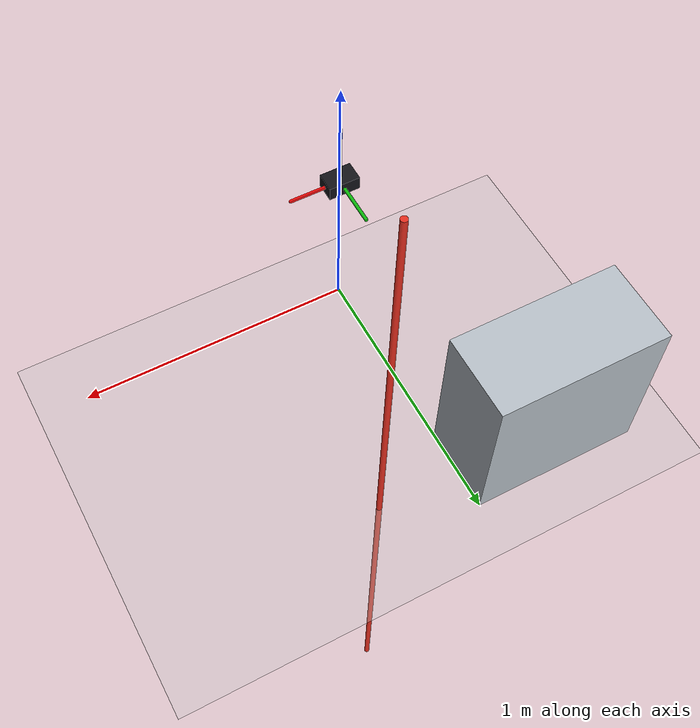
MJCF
<mujoco model="orbslam3_camera_trajectory_replay">
  <compiler angle="radian" autolimits="true" />

  <option timestep="0.005" gravity="0 0 -9.81" />

  <extension>
    <plugin plugin="mujoco.sensor.ray_caster_camera" />
  </extension>

  <visual>
    <global azimuth="135" elevation="-25" offwidth="1280" offheight="720" />
    <quality shadowsize="2048" />
    <headlight diffuse="0.6 0.6 0.6" ambient="0.2 0.2 0.2" specular="0.1 0.1 0.1" />
  </visual>

  <include file="mujoco_custom_scene.xml" />

  <asset>
    <material name="camera_body" rgba="0.08 0.08 0.10 1" />
    <material name="axis_x" rgba="1.0 0.05 0.05 1" />
    <material name="axis_y" rgba="0.05 0.75 0.05 1" />
    <material name="axis_z" rgba="0.05 0.25 1.0 1" />
    <material name="path" rgba="0.0 0.35 1.0 1" />
  </asset>

  <worldbody>
    <body name="tracked_camera_mocap" mocap="true" pos="0 0 0.6" quat="1 0 0 0">
      <geom name="camera_box" type="box" size="0.055 0.035 0.025" material="camera_body" />

      <!-- Body axes follow the ORB/OpenCV camera convention: X right, Y down, Z forward. -->
      <geom name="camera_axis_x" type="capsule" fromto="0 0 0 0.18 0 0" size="0.006"
        material="axis_x" />
      <geom name="camera_axis_y" type="capsule" fromto="0 0 0 0 0.18 0" size="0.006"
        material="axis_y" />
      <geom name="camera_axis_z" type="capsule" fromto="0 0 0 0 0 0.24" size="0.006"
        material="axis_z" />

      <!-- MuJoCo cameras look along local -Z. This fixed 180 deg X rotation maps
           the camera view onto the ORB/OpenCV +Z optical axis. -->
      <camera name="tracked_camera" pos="0 0 0" quat="0 1 0 0"
        focal="1 1"
        sensorsize="2.0 1.1547005"
        resolution="640 370" />
    </body>

    <camera name="overview" pos="2.5 -3.0 2.0" xyaxes="0.76 0.65 0 -0.32 0.38 0.87" fovy="45" />
  </worldbody>

  <sensor>
    <plugin name="tracked_depth_raycaster" plugin="mujoco.sensor.ray_caster_camera"
      objtype="camera" objname="tracked_camera">
      <config key="focal_length" value="1" />
      <config key="horizontal_aperture" value="2" />
      <config key="vertical_aperture" value="1.154700538" />
      <config key="size" value="64 32" />
      <config key="dis_range" value="0.01 5.0" />
      <config key="baseline" value="0.095" />
      <config key="lossangle" value="80" />
      <config key="min_energy" value="0.2" />
      <config key="sensor_data_types" value="distance_to_image_plane_noise" />
      <config key="noise_type" value="stereo_noise" />
      <config key="noise_cfg" value="6 0" />
      <config key="draw_hip_point" value="1 0.015 1 0 0 0.75" />
      <config key="geomgroup" value="1 1 1 1 1 1" />
      <config key="detect_parentbody" value="0" />
      <config key="n_step_update" value="1" />
    </plugin>

    <plugin name="tracked_aux_depth_raycaster" plugin="mujoco.sensor.ray_caster_camera"
      objtype="camera" objname="tracked_camera">
      <config key="focal_length" value="1" />
      <config key="horizontal_aperture" value="2" />
      <config key="vertical_aperture" value="1.154700538" />
      <config key="size" value="64 32" />
      <config key="dis_range" value="0.01 5.0" />
      <config key="baseline" value="0.0" />
      <config key="lossangle" value="88" />
      <config key="min_energy" value="0.0" />
      <config key="sensor_data_types" value="distance_to_image_plane_noise" />
      <config key="noise_type" value="noise1" />
      <config key="noise_cfg" value="0 0 0.05 0" />
      <config key="geomgroup" value="1 1 1 1 1 1" />
      <config key="detect_parentbody" value="0" />
      <config key="n_step_update" value="1" />
    </plugin>
  </sensor>
</mujoco>

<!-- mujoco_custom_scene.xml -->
<mujocoinclude>
  <asset>
    <!-- Put textures, materials, meshes, and other assets for your custom scene here. -->
    <texture name="grid" type="2d" builtin="checker" width="512" height="512" rgb1="0.86 0.86 0.86" rgb2="0.72 0.72 0.72"/>
    <material name="grid" texture="grid" texrepeat="16 16" reflectance="0.08"/>
    <material name="scene_wall" rgba="0.72 0.75 0.78 1"/>
    <material name="scene_marker" rgba="0.90 0.18 0.12 1"/>
  </asset>

  <worldbody>
    <!-- Put lights, geoms, bodies, and fixed cameras for your custom scene here. -->
    <light name="key" pos="2 -3 4" dir="-0.4 0.5 -1" directional="true"/>
    <geom name="ground" type="plane" size="8 8 0.02" material="grid"/>

    <!-- Example reference geometry; edit or delete freely. -->
    <geom name="reference_wall" type="box" pos="-0.3 0.85 0.3"
    size="0.3 0.15 0.3" material="scene_wall"/>

    <geom type="cylinder" pos="0.3 0.85 0" size="0.01 1.5" material="scene_marker"/>

  </worldbody>
</mujocoinclude>
